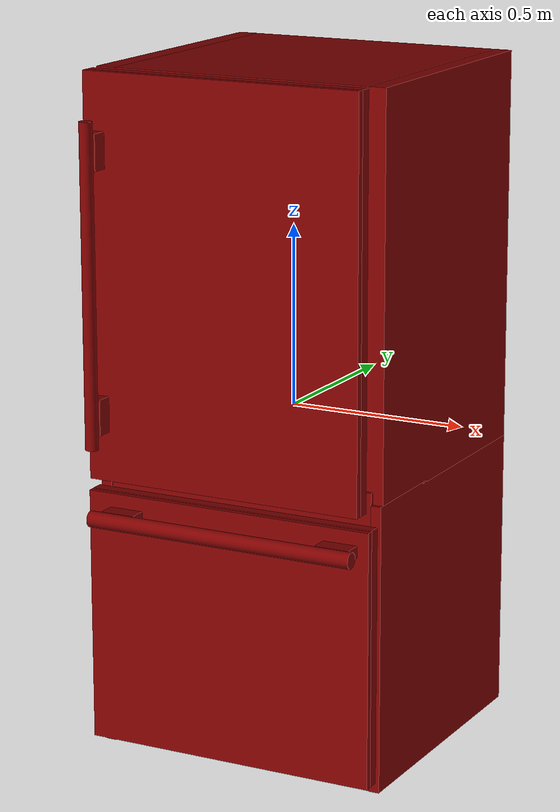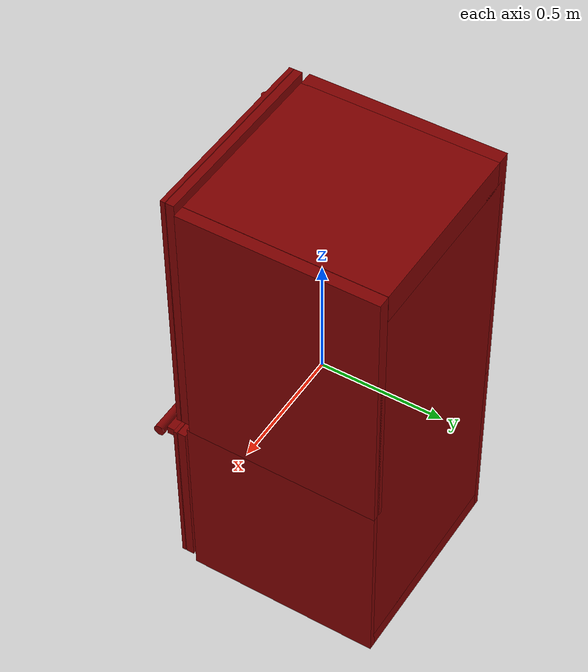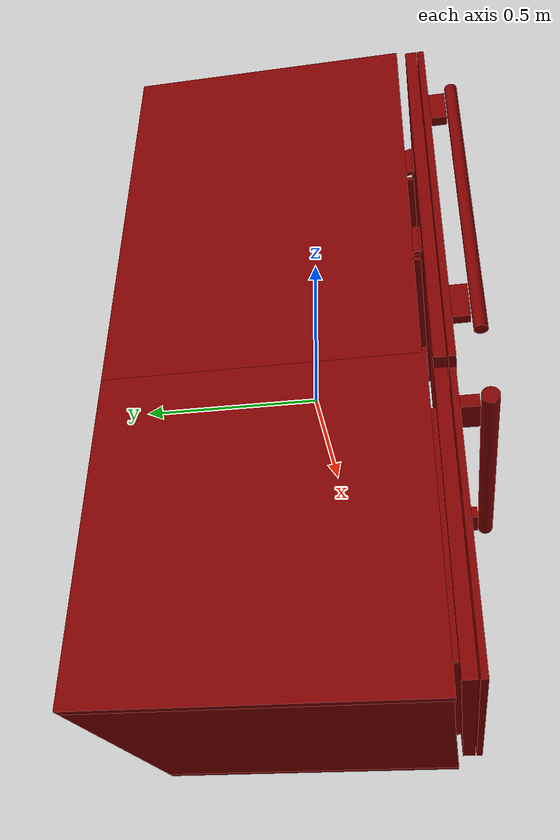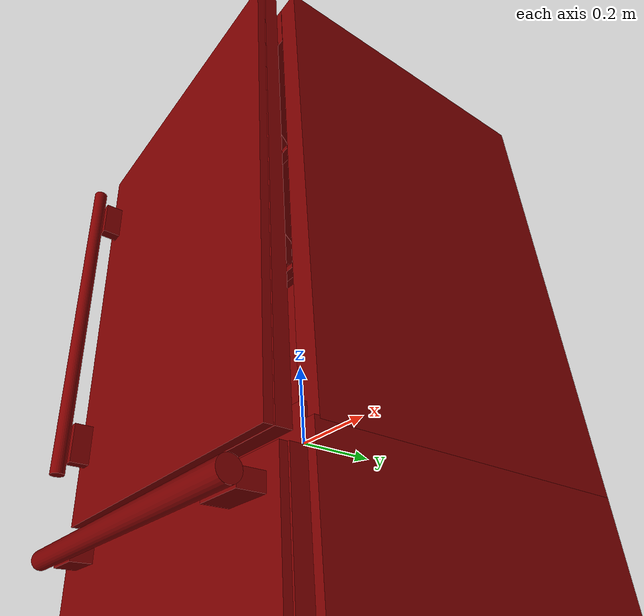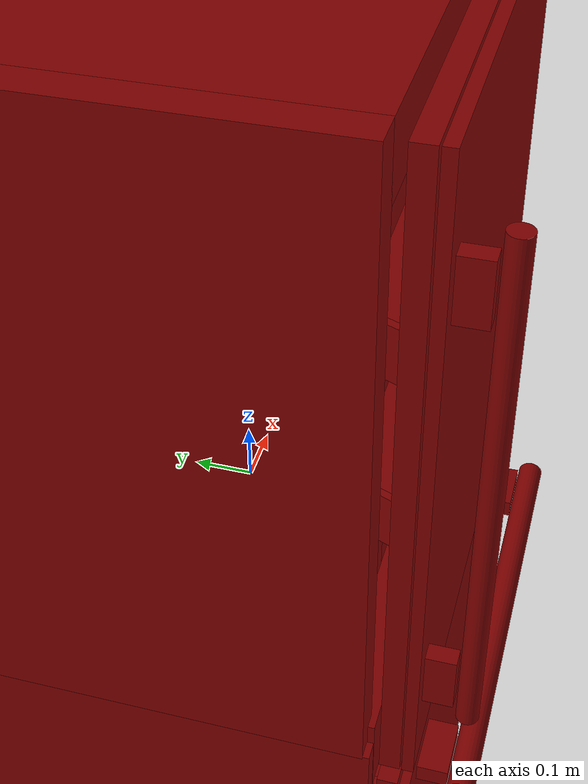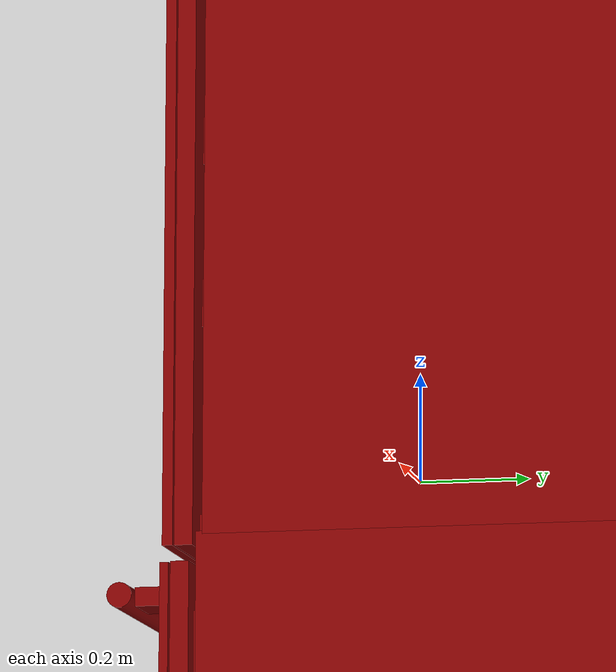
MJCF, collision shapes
<?xml version='1.0' encoding='UTF-8'?>
<mujoco model="model">
  <option timestep="0.002" gravity="0.0 0.0 -9.81"/>
  <compiler angle="radian"/>
  <asset>
    <mesh file="visuals/freezer0.obj" name="freezer0_vis"/>
    <mesh file="visuals/fridge_door.obj" name="fridge_door_vis"/>
    <mesh file="visuals/fridge_door_Clear.obj" name="fridge_door_Clear_vis"/>
    <mesh file="visuals/fridge_drawer0.obj" name="fridge_drawer0_vis"/>
    <mesh file="visuals/Body001.obj" name="Body001_vis"/>
    <mesh file="visuals/Body002.obj" name="Body002_vis"/>
    <mesh file="visuals/Body002_Clear.obj" name="Body002_Clear_vis"/>
    <texture file="visuals/T_BC001.png" name="Body001_material" type="2d"/>
    <material name="Body001_material" rgba="1 1 1 1.0" texture="Body001_material" shininess="2" specular="2"/>
    <texture file="visuals/T_BC001.png" name="freezer0_material" type="2d"/>
    <material name="freezer0_material" rgba="1 1 1 1.0" texture="freezer0_material" shininess="2" specular="2"/>
    <texture file="visuals/T_BC001.png" name="fridge_door_material" type="2d"/>
    <material name="fridge_door_material" rgba="1 1 1 1.0" texture="fridge_door_material" shininess="2" specular="2"/>
    <texture file="visuals/T_BC001.png" name="fridge_door_Clear_material" type="2d"/>
    <material name="fridge_door_Clear_material" rgba="1 1 1 0.699999988079071" texture="fridge_door_Clear_material" shininess="0.141421377658844" specular="0.3103448502657381"/>
    <texture file="visuals/T_BC001.png" name="fridge_drawer0_material" type="2d"/>
    <material name="fridge_drawer0_material" rgba="1 1 1 1.0" texture="fridge_drawer0_material" shininess="0.141421377658844" specular="0.3103448502657381"/>
    <texture file="visuals/T_BC001.png" name="Body002_material" type="2d"/>
    <material name="Body002_material" rgba="1 1 1 1.0" texture="Body002_material" shininess="0.141421377658844" specular="0.3103448502657381"/>
    <texture file="visuals/T_BC001.png" name="Body002_Clear_material" type="2d"/>
    <material name="Body002_Clear_material" rgba="1 1 1 0.699999988079071" texture="Body002_Clear_material" shininess="0.141421377658844" specular="0.3103448502657381"/>
  </asset>
  <default>
    <default class="visual">
      <geom conaffinity="0" contype="0" group="1" type="mesh"/>
    </default>
    <default class="collision">
      <geom group="0" rgba="0.5 0 0 0.5"/>
    </default>
    <default class="spawn">
      <geom group="0" rgba="1 1 1 0.5" contype="0" conaffinity="0"/>
      <site group="0" rgba="1 1 1 0.5"/>
    </default>
    <default class="region">
      <geom group="1" conaffinity="0" contype="0" rgba="0 1 0 0"/>
    </default>
  </default>
  <worldbody>
    <body>
      <body name="object">
        <geom mesh="Body001_vis" type="mesh" solimp="0.998 0.998 0.001" solref="0.001 1" friction="0.95 0.3 0.1" class="visual" material="Body001_material"/>
        <geom class="collision" type="box" pos="-0.39131961 0.08241793 0.39245440" size="0.028802350163459778 0.39184296131134033 0.5434025526046753" quat="1.0 0.0 0.0 0.0"/>
        <geom class="collision" type="box" pos="0.39523309 0.08241793 0.39245440" size="0.024584952741861343 0.39184296131134033 0.5434025526046753" quat="1.0 0.0 0.0 0.0"/>
        <geom class="collision" type="box" pos="0.00217254 0.08241793 0.87790029" size="0.3672516942024231 0.39184296131134033 0.05795662850141525" quat="1.0 0.0 0.0 0.0"/>
        <geom class="collision" type="box" pos="0.00194339 0.07327440 -0.18796281" size="0.3891288936138153 0.3936358690261841 0.07550559192895889" quat="1.0 0.0 0.0 0.0"/>
        <geom class="collision" type="box" pos="-0.40537561 0.07694970 -0.54155685" size="0.014746241271495819 0.39731115102767944 0.3955075442790985" quat="1.0 0.0 0.0 0.0"/>
        <geom class="collision" type="box" pos="0.40492418 0.07694970 -0.54155685" size="0.014893732964992523 0.39731115102767944 0.3955075442790985" quat="1.0 0.0 0.0 0.0"/>
        <geom class="collision" type="box" pos="0.00358352 0.07844679 -0.90064169" size="0.3953417241573334 0.39581403136253357 0.03642264008522034" quat="1.0 0.0 0.0 0.0"/>
        <geom class="collision" type="box" pos="0.00358352 0.42233846 -0.01905190" size="0.3953417241573334 0.05192239582538605 0.8492542505264282" quat="1.0 0.0 0.0 0.0"/>
        <geom class="collision" type="box" pos="0.36977731 0.08785868 0.40315856" size="0.03169756010174751 0.3709336817264557 0.5131335258483887" quat="1.0 0.0 0.0 0.0"/>
        <geom class="collision" type="box" pos="-0.36956254 0.08582555 0.40439819" size="0.030570153146982193 0.37296679615974426 0.5118939280509949" quat="1.0 0.0 0.0 0.0"/>
        <geom class="collision" type="box" pos="0.00358352 0.33398625 0.80472110" size="0.3953417241573334 0.04702861234545708 0.06822988390922546" quat="1.0 0.0 0.0 0.0"/>
        <geom class="collision" type="box" pos="0.00090426 -0.27342927 0.51222442" size="0.33716708421707153 0.010380997322499752 0.005431113764643669" quat="1.0 0.0 0.0 0.0"/>
        <geom class="collision" type="box" pos="0.00090426 -0.27342927 0.19584741" size="0.33716708421707153 0.010380997322499752 0.005431113764643669" quat="1.0 0.0 0.0 0.0"/>
        <geom class="collision" type="box" pos="-0.32956136 0.05323951 0.18498475" size="0.006701474077999592 0.3169732689857483 0.009466687217354774" quat="1.0 0.0 0.0 0.0"/>
        <geom class="collision" type="box" pos="-0.32956136 0.05323951 0.49812539" size="0.006701474077999592 0.3169732689857483 0.009466687217354774" quat="1.0 0.0 0.0 0.0"/>
        <geom class="collision" type="box" pos="0.33053826 0.05323951 0.49812539" size="0.006701474077999592 0.3169732689857483 0.009466687217354774" quat="1.0 0.0 0.0 0.0"/>
        <geom class="collision" type="box" pos="0.33053826 0.05323951 0.18498475" size="0.006701474077999592 0.3169732689857483 0.009466687217354774" quat="1.0 0.0 0.0 0.0"/>
        <body name="freezer0">
          <geom class="region" name="reg_freezer0" type="box" pos="0.0009053400000000045 -4.170500000000299e-05 -0.5584642" size="0.35477388 0.323100295 0.2756983"/>
          <joint axis="0.0 -1.0 0.0" pos="0.00019336 -0.06246153 -0.55154659" limited="true" name="freezer0_door_joint" range="0.0 0.5" type="slide" damping="1" frictionloss="1" armature=".01" stiffness="0.05"/>
          <geom mesh="freezer0_vis" type="mesh" solimp="0.998 0.998 0.001" solref="0.001 1" friction="0.95 0.3 0.1" class="visual" material="freezer0_material"/>
          <geom class="collision" type="box" pos="-0.00017008 0.00813226 -0.84782202" size="0.3701292872428894 0.34120413661003113 0.009354394860565662" quat="1.0 0.0 0.0 0.0"/>
          <geom class="collision" type="box" pos="-0.00017008 0.33878663 -0.56514312" size="0.3701292872428894 0.01052781380712986 0.28678572177886963" quat="1.0 0.0 0.0 0.0"/>
          <geom class="collision" type="box" pos="0.36839937 0.00263315 -0.56798453" size="0.007603747770190239 0.3466814458370209 0.28958696126937866" quat="1.0 0.0 0.0 0.0"/>
          <geom class="collision" type="box" pos="-0.36680970 0.00264047 -0.56831921" size="0.007603311911225319 0.34668877720832825 0.2899724841117859" quat="1.0 0.0 0.0 0.0"/>
          <geom class="collision" type="box" pos="-0.00116795 -0.35005409 -0.55083997" size="0.41728663444519043 0.01649395562708378 0.353924423456192" quat="1.0 0.0 0.0 0.0"/>
          <geom class="collision" type="box" pos="0.33536109 -0.40748632 -0.25291039" size="0.049024518579244614 0.029207300394773483 0.016668500378727913" quat="1.0 0.0 0.0 0.0" name="freezer0_door_handle_1"/>
          <geom class="collision" type="box" pos="-0.30382086 -0.40722013 -0.25261299" size="0.048443470150232315 0.028894582763314247 0.016371121630072594" quat="1.0 0.0 0.0 0.0" name="freezer0_door_handle_2"/>
          <geom class="collision" type="cylinder" pos="0.01713325 -0.46054244 -0.25178005" size="0.022285399958491325 0.3874594271183014" quat="0.7071068286895752 -0.0 0.7071067690849304 0.0" name="freezer0_door_handle_main"/>
          <geom class="collision" type="box" pos="-0.00159376 -0.37768966 -0.55158283" size="0.4177122414112091 0.007754170801490545 0.3531815707683563" quat="1.0 0.0 0.0 0.0" name="freezer0_door_main"/>
        </body>
        <body name="fridge_door">
          <joint axis="0.0 0.0 1.0" pos="0.38662343 -0.35977599 0.38540234" limited="true" name="fridge_door_joint" range="0.0 1.5707963267948966" type="hinge" damping="1" frictionloss="1" armature=".01" stiffness="0.05"/>
          <geom mesh="fridge_door_vis" type="mesh" solimp="0.998 0.998 0.001" solref="0.001 1" friction="0.95 0.3 0.1" class="visual" material="fridge_door_material"/>
          <geom class="collision" type="box" pos="-0.00647552 -0.28218752 0.53677826" size="0.2912273705005646 0.046716656535863876 0.004199703224003315" quat="1.0 0.0 0.0 0.0"/>
          <geom class="collision" type="box" pos="-0.01736183 -0.23179969 0.57784026" size="0.27472445368766785 0.004939785692840815 0.043506573885679245" quat="1.0 0.0 0.0 0.0"/>
          <geom class="collision" type="box" pos="-0.30642326 -0.28230718 0.57694273" size="0.006150530185550451 0.048938725143671036 0.044404126703739166" quat="0.9805420637130737 0.0 0.0 -0.1963091492652893"/>
          <geom class="collision" type="box" pos="-0.00394828 -0.33101273 0.57784026" size="0.32525894045829773 0.004939785692840815 0.043506573885679245" quat="1.0 0.0 0.0 0.0"/>
          <geom class="collision" type="box" pos="0.28620594 -0.27707371 0.57694273" size="0.006150530185550451 0.05485717952251434 0.044404126703739166" quat="1.8896014353231294e-07 0.9704836010932922 0.24116702377796173 4.695695210443773e-08"/>
          <geom class="collision" type="box" pos="0.28620594 -0.27707371 0.27951811" size="0.006150530185550451 0.05485717952251434 0.044404126703739166" quat="1.8896014353231294e-07 0.9704836010932922 0.24116702377796173 4.695695210443773e-08"/>
          <geom class="collision" type="box" pos="-0.30642326 -0.28230718 0.27951811" size="0.006150530185550451 0.048938725143671036 0.044404126703739166" quat="0.9805420637130737 0.0 0.0 -0.1963091492652893"/>
          <geom class="collision" type="box" pos="-0.00394828 -0.33101273 0.28041567" size="0.32525894045829773 0.004939785692840815 0.043506573885679245" quat="1.0 0.0 0.0 0.0"/>
          <geom class="collision" type="box" pos="-0.01736183 -0.23179969 0.28041567" size="0.27472445368766785 0.004939785692840815 0.043506573885679245" quat="1.0 0.0 0.0 0.0"/>
          <geom class="collision" type="box" pos="-0.00647552 -0.28218752 0.23935367" size="0.2912273705005646 0.046716656535863876 0.004199703224003315" quat="1.0 0.0 0.0 0.0"/>
          <geom class="collision" type="box" pos="-0.01456871 -0.35133857 0.38603361" size="0.39884209632873535 0.01653221808373928 0.5498232841491699" quat="1.0 0.0 0.0 0.0"/>
          <geom class="collision" type="box" pos="-0.36561994 -0.40666988 0.02185466" size="0.014596573077142239 0.03000330924987793 0.04923227056860924" quat="1.0 0.0 0.0 0.0" name="fridge_door_handle_1"/>
          <geom class="collision" type="box" pos="-0.36561994 -0.40666988 0.73090612" size="0.014596573077142239 0.03000330924987793 0.04923227056860924" quat="1.0 0.0 0.0 0.0" name="fridge_door_handle_2"/>
          <geom class="collision" type="cylinder" pos="-0.36371262 -0.45794114 0.37726294" size="0.01782999001443386 0.4379538893699646" quat="1.0 0.0 0.0 0.0" name="fridge_door_handle_main"/>
          <geom class="collision" type="box" pos="-0.01456871 -0.37997162 0.38603361" size="0.39884209632873535 0.009346538223326206 0.5498232841491699" quat="1.0 0.0 0.0 0.0" name="fridge_door_main"/>
          <body name="fridge_door_Clear">
            <geom mesh="fridge_door_Clear_vis" type="mesh" solimp="0.998 0.998 0.001" solref="0.001 1" friction="0.95 0.3 0.1" class="visual" material="fridge_door_Clear_material"/>
            <geom class="collision" type="box" pos="-0.00647552 -0.28218752 0.53677826" size="0.2912273705005646 0.046716656535863876 0.004199703224003315" quat="1.0 0.0 0.0 0.0"/>
            <geom class="collision" type="box" pos="-0.01736183 -0.23179969 0.57784026" size="0.27472445368766785 0.004939785692840815 0.043506573885679245" quat="1.0 0.0 0.0 0.0"/>
            <geom class="collision" type="box" pos="-0.30642326 -0.28230718 0.57694273" size="0.006150530185550451 0.048938725143671036 0.044404126703739166" quat="0.9805420637130737 0.0 0.0 -0.1963091492652893"/>
            <geom class="collision" type="box" pos="-0.00394828 -0.33101273 0.57784026" size="0.32525894045829773 0.004939785692840815 0.043506573885679245" quat="1.0 0.0 0.0 0.0"/>
            <geom class="collision" type="box" pos="0.28620594 -0.27707371 0.57694273" size="0.006150530185550451 0.05485717952251434 0.044404126703739166" quat="1.8896014353231294e-07 0.9704836010932922 0.24116702377796173 4.695695210443773e-08"/>
            <geom class="collision" type="box" pos="0.28620594 -0.27707371 0.27951811" size="0.006150530185550451 0.05485717952251434 0.044404126703739166" quat="1.8896014353231294e-07 0.9704836010932922 0.24116702377796173 4.695695210443773e-08"/>
            <geom class="collision" type="box" pos="-0.30642326 -0.28230718 0.27951811" size="0.006150530185550451 0.048938725143671036 0.044404126703739166" quat="0.9805420637130737 0.0 0.0 -0.1963091492652893"/>
            <geom class="collision" type="box" pos="-0.00394828 -0.33101273 0.28041567" size="0.32525894045829773 0.004939785692840815 0.043506573885679245" quat="1.0 0.0 0.0 0.0"/>
            <geom class="collision" type="box" pos="-0.01736183 -0.23179969 0.28041567" size="0.27472445368766785 0.004939785692840815 0.043506573885679245" quat="1.0 0.0 0.0 0.0"/>
            <geom class="collision" type="box" pos="-0.00647552 -0.28218752 0.23935367" size="0.2912273705005646 0.046716656535863876 0.004199703224003315" quat="1.0 0.0 0.0 0.0"/>
          </body>
        </body>
        <body name="fridge_drawer0">
          <geom class="region" name="reg_fridge_drawer0" type="box" pos="-0.0004942349999999818 0.04495086499999999 0.034713345" size="0.30087438499999997 0.262532705 0.11687519499999999"/>
          <joint axis="0.0 -1.0 0.0" pos="-0.00076568 0.04170772 0.03958751" limited="true" name="fridge_drawer0_joint" range="0.0 0.5" type="slide" damping="1" frictionloss="1" armature=".01" stiffness="0.05"/>
          <geom mesh="fridge_drawer0_vis" type="mesh" solimp="0.998 0.998 0.001" solref="0.001 1" friction="0.95 0.3 0.1" class="visual" material="fridge_drawer0_material"/>
          <geom class="collision" type="box" pos="0.21047302 -0.23710339 0.03958756" size="0.10486385971307755 0.014233794994652271 0.1471829116344452" quat="1.0 0.0 0.0 0.0"/>
          <geom class="collision" type="box" pos="-0.00091300 0.05773045 -0.08911913" size="0.2997267544269562 0.26998597383499146 0.002309689298272133" quat="1.0 0.0 0.0 0.0"/>
          <geom class="collision" type="box" pos="0.00216257 0.33353502 0.03431232" size="0.2999245524406433 0.0018262326484546065 0.1215706318616867" quat="1.0 0.0 0.0 0.0"/>
          <geom class="collision" type="box" pos="-0.31062586 0.04803626 0.03364088" size="0.0020417687483131886 0.27182433009147644 0.12089957296848297" quat="1.0 0.0 0.0 0.0"/>
          <geom class="collision" type="box" pos="0.30909439 0.04841191 0.03477605" size="0.002041732193902135 0.27220070362091064 0.12203512340784073" quat="1.0 0.0 0.0 0.0"/>
          <geom class="collision" type="box" pos="-0.18362270 -0.23710327 0.03958752" size="0.13324549794197083 0.014233827590942383 0.1471828818321228" quat="1.0 0.0 0.0 0.0"/>
          <geom class="collision" type="box" pos="0.02761589 -0.23710343 -0.04211208" size="0.07799292355775833 0.014233889989554882 0.06548330187797546" quat="1.0 0.0 0.0 0.0"/>
          <geom class="collision" type="box" pos="0.02761589 -0.23710300 0.12816726" size="0.07799293845891953 0.014233887195587158 0.05860316380858421" quat="1.0 0.0 0.0 0.0"/>
          <geom class="collision" type="box" pos="0.02761589 -0.22347802 0.04646765" size="0.07799295336008072 0.0006086547509767115 0.02309640496969223" quat="1.0 0.0 0.0 0.0"/>
        </body>
        <body name="Body002">
          <geom mesh="Body002_vis" type="mesh" solimp="0.998 0.998 0.001" solref="0.001 1" friction="0.95 0.3 0.1" class="visual" material="Body002_material"/>
          <geom class="collision" type="box" pos="0.00122408 0.04189947 0.51357393" size="0.3379962146282196 0.3175697922706604 0.003920715767890215" quat="1.0 0.0 0.0 0.0"/>
          <geom class="collision" type="box" pos="0.00116364 0.04157707 0.19670688" size="0.338090181350708 0.31791016459465027 0.004801549483090639" quat="1.0 0.0 0.0 0.0"/>
          <body name="Body002_Clear">
            <geom mesh="Body002_Clear_vis" type="mesh" solimp="0.998 0.998 0.001" solref="0.001 1" friction="0.95 0.3 0.1" class="visual" material="Body002_Clear_material"/>
            <geom class="collision" type="box" pos="0.00122408 0.04189947 0.51357393" size="0.3379962146282196 0.3175697922706604 0.003920715767890215" quat="1.0 0.0 0.0 0.0"/>
            <geom class="collision" type="box" pos="0.00116364 0.04157707 0.19670688" size="0.338090181350708 0.31791016459465027 0.004801549483090639" quat="1.0 0.0 0.0 0.0"/>
          </body>
        </body>
        <geom class="region" name="reg_fridge_shelf0" type="box" pos="0.000764960000000009 0.06382827500000002 0.3447706" size="0.33093090000000003 0.28392126500000003 0.13759978"/>
        <geom class="region" name="reg_fridge_shelf1" type="box" pos="0.000764960000000009 0.029580355000000003 0.6680698" size="0.33093090000000003 0.249673345 0.14621566000000003"/>
        <geom class="region" name="reg_main" type="box" pos="-0.00015199999999998548 0.04191059 -0.00020100000000000673" size="0.42096992 0.43335028 0.93705793"/>
      </body>
    </body>
  </worldbody>
  <actuator>
    <motor name="freezer0_door_joint_actuator" joint="freezer0_door_joint" gear="50"/>
    <motor name="fridge_door_joint_actuator" joint="fridge_door_joint" gear="50"/>
    <motor name="fridge_drawer0_joint_actuator" joint="fridge_drawer0_joint" gear="50"/>
  </actuator>
</mujoco>
